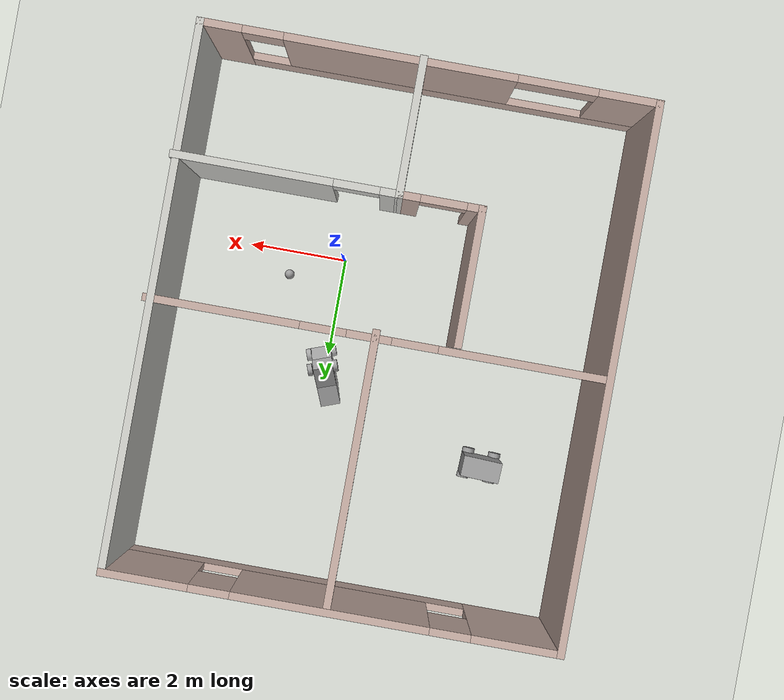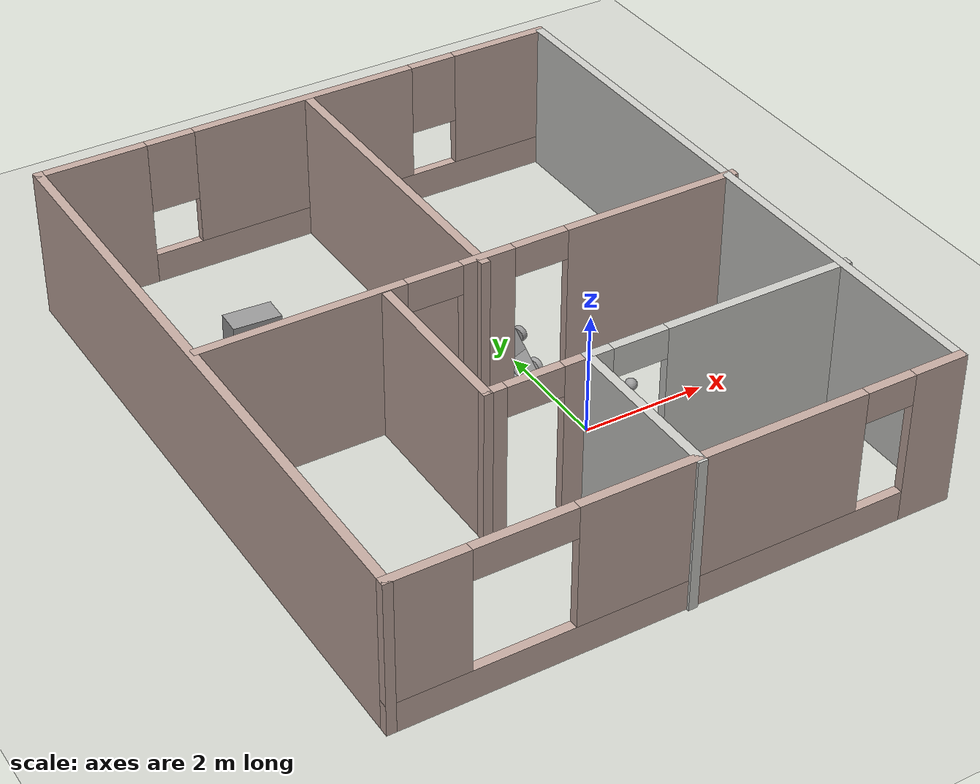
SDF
<sdf version="1.6">
 <world name="default">
  <plugin name="hello" filename="libhello.so"/>
  <light name="sun" type="directional">
   <pose>0 0 10 0 -0 0</pose>
   <diffuse>0.8 0.8 0.8 1</diffuse>
   <specular>0.1 0.1 0.1 1</specular>
   <attenuation>
    <range>1000</range>
    <constant>0.9</constant>
    <linear>0.01</linear>
    <quadratic>0.001</quadratic>
   </attenuation>
   <direction>-0.5 0.5 -1</direction>
  </light>
  <model name="ground_plane">
   <static>1</static>
   <link name="link">
    <collision name="collision">
     <geometry><plane><normal>0 0 1</normal><size>100 100</size></plane></geometry>
     <surface><friction><ode><mu>100</mu><mu2>50</mu2></ode></friction></surface>
    </collision>
    <visual name="visual">
     <cast_shadows>0</cast_shadows>
     <geometry><plane><normal>0 0 1</normal><size>100 100</size></plane></geometry>
     <material>
      <script><uri>file://media/materials/scripts/gazebo.material</uri><name>Gazebo/Grey</name></script>
     </material>
    </visual>
   </link>
  </model>
  <gravity>0 0 -9.8</gravity>
  <magnetic_field>6e-06 2.3e-05 -4.2e-05</magnetic_field>
  <atmosphere type="adiabatic"/>
  <physics name="default_physics" default="0" type="ode">
   <max_step_size>0.001</max_step_size>
   <real_time_factor>1</real_time_factor>
   <real_time_update_rate>1000</real_time_update_rate>
  </physics>
  <scene><ambient>0.4 0.4 0.4 1</ambient><background>0.7 0.7 0.7 1</background><shadows>1</shadows></scene>
  <spherical_coordinates>
   <surface_model>EARTH_WGS84</surface_model>
   <latitude_deg>0</latitude_deg>
   <longitude_deg>0</longitude_deg>
   <elevation>0</elevation>
   <heading_deg>0</heading_deg>
  </spherical_coordinates>
  <model name="robot">
   <link name="link_1">
    <pose>0.270998 -0.281948 0.647062 1.57 -0 0</pose>
    <inertial>
     <mass>1</mass>
     <inertia><ixx>0.145833</ixx><ixy>0</ixy><ixz>0</ixz><iyy>0.145833</iyy><iyz>0</iyz><izz>0.125</izz></inertia>
    </inertial>
    <visual name="visual">
     <geometry><cylinder><radius>0.127</radius><length>0.1</length></cylinder></geometry>
     <material>
      <lighting>1</lighting>
      <script><uri>file://media/materials/scripts/gazebo.material</uri><name>Gazebo/Grey</name></script>
      <shader type="pixel"><normal_map>__default__</normal_map></shader>
      <ambient>0.3 0.3 0.3 1</ambient>
      <diffuse>0.7 0.7 0.7 1</diffuse>
      <specular>0.01 0.01 0.01 1</specular>
      <emissive>0 0 0 1</emissive>
     </material>
    </visual>
    <collision name="collision">
     <geometry><cylinder><radius>0.127</radius><length>0.1</length></cylinder></geometry>
     <surface>
      <friction>
       <ode><mu>1</mu><mu2>1</mu2><fdir1>0 0 0</fdir1><slip1>0</slip1><slip2>0</slip2></ode>
       <torsional>
        <coefficient>1</coefficient>
        <patch_radius>0</patch_radius>
        <surface_radius>0</surface_radius>
        <use_patch_radius>1</use_patch_radius>
        <ode><slip>0</slip></ode>
       </torsional>
      </friction>
      <bounce><restitution_coefficient>0</restitution_coefficient><threshold>1e+06</threshold></bounce>
      <contact>
       <collide_without_contact>0</collide_without_contact>
       <collide_without_contact_bitmask>1</collide_without_contact_bitmask>
       <collide_bitmask>1</collide_bitmask>
       <ode>
        <soft_cfm>0</soft_cfm>
        <soft_erp>0.2</soft_erp>
        <kp>1e+13</kp>
        <kd>1</kd>
        <max_vel>0.01</max_vel>
        <min_depth>0</min_depth>
       </ode>
       <bullet>
        <split_impulse>1</split_impulse>
        <split_impulse_penetration_threshold>-0.01</split_impulse_penetration_threshold>
        <soft_cfm>0</soft_cfm>
        <soft_erp>0.2</soft_erp>
        <kp>1e+13</kp>
        <kd>1</kd>
       </bullet>
      </contact>
     </surface>
    </collision>
   </link>
   <link name="link_1_clone">
    <pose>0.275142 0.249179 0.641427 1.57 -0 0</pose>
    <inertial>
     <mass>1</mass>
     <inertia><ixx>0.145833</ixx><ixy>0</ixy><ixz>0</ixz><iyy>0.145833</iyy><iyz>0</iyz><izz>0.125</izz></inertia>
    </inertial>
    <visual name="visual">
     <geometry><cylinder><radius>0.127</radius><length>0.1</length></cylinder></geometry>
     <material>
      <lighting>1</lighting>
      <script><uri>file://media/materials/scripts/gazebo.material</uri><name>Gazebo/Grey</name></script>
      <shader type="pixel"><normal_map>__default__</normal_map></shader>
      <ambient>0.3 0.3 0.3 1</ambient>
      <diffuse>0.7 0.7 0.7 1</diffuse>
      <specular>0.01 0.01 0.01 1</specular>
      <emissive>0 0 0 1</emissive>
     </material>
    </visual>
    <collision name="collision">
     <geometry><cylinder><radius>0.127</radius><length>0.1</length></cylinder></geometry>
     <surface>
      <friction>
       <ode><mu>1</mu><mu2>1</mu2><fdir1>0 0 0</fdir1><slip1>0</slip1><slip2>0</slip2></ode>
       <torsional>
        <coefficient>1</coefficient>
        <patch_radius>0</patch_radius>
        <surface_radius>0</surface_radius>
        <use_patch_radius>1</use_patch_radius>
        <ode><slip>0</slip></ode>
       </torsional>
      </friction>
      <bounce><restitution_coefficient>0</restitution_coefficient><threshold>1e+06</threshold></bounce>
      <contact>
       <collide_without_contact>0</collide_without_contact>
       <collide_without_contact_bitmask>1</collide_without_contact_bitmask>
       <collide_bitmask>1</collide_bitmask>
       <ode>
        <soft_cfm>0</soft_cfm>
        <soft_erp>0.2</soft_erp>
        <kp>1e+13</kp>
        <kd>1</kd>
        <max_vel>0.01</max_vel>
        <min_depth>0</min_depth>
       </ode>
       <bullet>
        <split_impulse>1</split_impulse>
        <split_impulse_penetration_threshold>-0.01</split_impulse_penetration_threshold>
        <soft_cfm>0</soft_cfm>
        <soft_erp>0.2</soft_erp>
        <kp>1e+13</kp>
        <kd>1</kd>
       </bullet>
      </contact>
     </surface>
    </collision>
   </link>
   <link name="link_1_clone_0">
    <pose>-0.275153 0.242976 0.647654 1.57 -0 0</pose>
    <inertial>
     <mass>1</mass>
     <inertia><ixx>0.145833</ixx><ixy>0</ixy><ixz>0</ixz><iyy>0.145833</iyy><iyz>0</iyz><izz>0.125</izz></inertia>
    </inertial>
    <visual name="visual">
     <geometry><cylinder><radius>0.127</radius><length>0.1</length></cylinder></geometry>
     <material>
      <lighting>1</lighting>
      <script><uri>file://media/materials/scripts/gazebo.material</uri><name>Gazebo/Grey</name></script>
      <shader type="pixel"><normal_map>__default__</normal_map></shader>
      <ambient>0.3 0.3 0.3 1</ambient>
      <diffuse>0.7 0.7 0.7 1</diffuse>
      <specular>0.01 0.01 0.01 1</specular>
      <emissive>0 0 0 1</emissive>
     </material>
    </visual>
    <collision name="collision">
     <geometry><cylinder><radius>0.127</radius><length>0.1</length></cylinder></geometry>
     <surface>
      <friction>
       <ode><mu>1</mu><mu2>1</mu2><fdir1>0 0 0</fdir1><slip1>0</slip1><slip2>0</slip2></ode>
       <torsional>
        <coefficient>1</coefficient>
        <patch_radius>0</patch_radius>
        <surface_radius>0</surface_radius>
        <use_patch_radius>1</use_patch_radius>
        <ode><slip>0</slip></ode>
       </torsional>
      </friction>
      <bounce><restitution_coefficient>0</restitution_coefficient><threshold>1e+06</threshold></bounce>
      <contact>
       <collide_without_contact>0</collide_without_contact>
       <collide_without_contact_bitmask>1</collide_without_contact_bitmask>
       <collide_bitmask>1</collide_bitmask>
       <ode>
        <soft_cfm>0</soft_cfm>
        <soft_erp>0.2</soft_erp>
        <kp>1e+13</kp>
        <kd>1</kd>
        <max_vel>0.01</max_vel>
        <min_depth>0</min_depth>
       </ode>
       <bullet>
        <split_impulse>1</split_impulse>
        <split_impulse_penetration_threshold>-0.01</split_impulse_penetration_threshold>
        <soft_cfm>0</soft_cfm>
        <soft_erp>0.2</soft_erp>
        <kp>1e+13</kp>
        <kd>1</kd>
       </bullet>
      </contact>
     </surface>
    </collision>
   </link>
   <link name="link_1_clone_1">
    <pose>-0.282405 -0.289294 0.64073 1.57 -0 0</pose>
    <inertial>
     <mass>1</mass>
     <inertia><ixx>0.145833</ixx><ixy>0</ixy><ixz>0</ixz><iyy>0.145833</iyy><iyz>0</iyz><izz>0.125</izz></inertia>
    </inertial>
    <visual name="visual">
     <geometry><cylinder><radius>0.127</radius><length>0.1</length></cylinder></geometry>
     <material>
      <lighting>1</lighting>
      <script><uri>file://media/materials/scripts/gazebo.material</uri><name>Gazebo/Grey</name></script>
      <shader type="pixel"><normal_map>__default__</normal_map></shader>
      <ambient>0.3 0.3 0.3 1</ambient>
      <diffuse>0.7 0.7 0.7 1</diffuse>
      <specular>0.01 0.01 0.01 1</specular>
      <emissive>0 0 0 1</emissive>
     </material>
    </visual>
    <collision name="collision">
     <geometry><cylinder><radius>0.127</radius><length>0.1</length></cylinder></geometry>
     <surface>
      <friction>
       <ode><mu>1</mu><mu2>1</mu2><fdir1>0 0 0</fdir1><slip1>0</slip1><slip2>0</slip2></ode>
       <torsional>
        <coefficient>1</coefficient>
        <patch_radius>0</patch_radius>
        <surface_radius>0</surface_radius>
        <use_patch_radius>1</use_patch_radius>
        <ode><slip>0</slip></ode>
       </torsional>
      </friction>
      <bounce><restitution_coefficient>0</restitution_coefficient><threshold>1e+06</threshold></bounce>
      <contact>
       <collide_without_contact>0</collide_without_contact>
       <collide_without_contact_bitmask>1</collide_without_contact_bitmask>
       <collide_bitmask>1</collide_bitmask>
       <ode>
        <soft_cfm>0</soft_cfm>
        <soft_erp>0.2</soft_erp>
        <kp>1e+13</kp>
        <kd>1</kd>
        <max_vel>0.01</max_vel>
        <min_depth>0</min_depth>
       </ode>
       <bullet>
        <split_impulse>1</split_impulse>
        <split_impulse_penetration_threshold>-0.01</split_impulse_penetration_threshold>
        <soft_cfm>0</soft_cfm>
        <soft_erp>0.2</soft_erp>
        <kp>1e+13</kp>
        <kd>1</kd>
       </bullet>
      </contact>
     </surface>
    </collision>
   </link>
   <link name="link_2">
    <pose>-0.000264 -0.021745 1.07308 0 -0 0</pose>
    <inertial>
     <mass>0.325742</mass>
     <inertia>
      <ixx>0.0318616</ixx>
      <ixy>0</ixy>
      <ixz>0</ixz>
      <iyy>0.0437228</iyy>
      <iyz>0</iyz>
      <izz>0.021294</izz>
     </inertia>
    </inertial>
    <visual name="visual">
     <geometry><box><size>0.781473 0.41683 1</size></box></geometry>
     <material>
      <lighting>1</lighting>
      <script><uri>file://media/materials/scripts/gazebo.material</uri><name>Gazebo/Grey</name></script>
      <shader type="pixel"><normal_map>__default__</normal_map></shader>
      <ambient>0.3 0.3 0.3 1</ambient>
      <diffuse>0.7 0.7 0.7 1</diffuse>
      <specular>0.01 0.01 0.01 1</specular>
      <emissive>0 0 0 1</emissive>
     </material>
    </visual>
    <collision name="collision">
     <geometry><box><size>0.781473 0.41683 1</size></box></geometry>
     <surface>
      <friction>
       <ode><mu>1</mu><mu2>1</mu2><fdir1>0 0 0</fdir1><slip1>0</slip1><slip2>0</slip2></ode>
       <torsional>
        <coefficient>1</coefficient>
        <patch_radius>0</patch_radius>
        <surface_radius>0</surface_radius>
        <use_patch_radius>1</use_patch_radius>
        <ode><slip>0</slip></ode>
       </torsional>
      </friction>
      <bounce><restitution_coefficient>0</restitution_coefficient><threshold>1e+06</threshold></bounce>
      <contact>
       <collide_without_contact>0</collide_without_contact>
       <collide_without_contact_bitmask>1</collide_without_contact_bitmask>
       <collide_bitmask>1</collide_bitmask>
       <ode>
        <soft_cfm>0</soft_cfm>
        <soft_erp>0.2</soft_erp>
        <kp>1e+13</kp>
        <kd>1</kd>
        <max_vel>0.01</max_vel>
        <min_depth>0</min_depth>
       </ode>
       <bullet>
        <split_impulse>1</split_impulse>
        <split_impulse_penetration_threshold>-0.01</split_impulse_penetration_threshold>
        <soft_cfm>0</soft_cfm>
        <soft_erp>0.2</soft_erp>
        <kp>1e+13</kp>
        <kd>1</kd>
       </bullet>
      </contact>
     </surface>
    </collision>
   </link>
   <joint name="link_2_JOINT_0" type="revolute">
    <parent>link_2</parent>
    <child>link_1_clone_1</child>
    <axis>
     <xyz>0 0 1</xyz>
     <use_parent_model_frame>0</use_parent_model_frame>
     <limit>
      <lower>-1.79769e+308</lower>
      <upper>1.79769e+308</upper>
      <effort>-1</effort>
      <velocity>-1</velocity>
     </limit>
     <dynamics>
      <spring_reference>0</spring_reference>
      <spring_stiffness>0</spring_stiffness>
      <damping>0</damping>
     </dynamics>
    </axis>
    <physics>
     <ode><limit><cfm>0</cfm><erp>0.2</erp></limit><suspension><cfm>0</cfm><erp>0.2</erp></suspension></ode>
    </physics>
   </joint>
   <joint name="link_2_JOINT_2" type="revolute">
    <parent>link_2</parent>
    <child>link_1</child>
    <axis>
     <xyz>0 0 1</xyz>
     <use_parent_model_frame>0</use_parent_model_frame>
     <limit>
      <lower>-1.79769e+308</lower>
      <upper>1.79769e+308</upper>
      <effort>-1</effort>
      <velocity>-1</velocity>
     </limit>
     <dynamics>
      <spring_reference>0</spring_reference>
      <spring_stiffness>0</spring_stiffness>
      <damping>0</damping>
      <friction>0</friction>
     </dynamics>
    </axis>
    <physics>
     <ode><limit><cfm>0</cfm><erp>0.2</erp></limit><suspension><cfm>0</cfm><erp>0.2</erp></suspension></ode>
    </physics>
   </joint>
   <joint name="link_2_JOINT_3" type="revolute">
    <parent>link_2</parent>
    <child>link_1_clone</child>
    <axis>
     <xyz>0 0 1</xyz>
     <use_parent_model_frame>0</use_parent_model_frame>
     <limit>
      <lower>-1.79769e+308</lower>
      <upper>1.79769e+308</upper>
      <effort>-1</effort>
      <velocity>-1</velocity>
     </limit>
     <dynamics>
      <spring_reference>0</spring_reference>
      <spring_stiffness>0</spring_stiffness>
      <damping>0</damping>
      <friction>0</friction>
     </dynamics>
    </axis>
    <physics>
     <ode><limit><cfm>0</cfm><erp>0.2</erp></limit><suspension><cfm>0</cfm><erp>0.2</erp></suspension></ode>
    </physics>
   </joint>
   <joint name="link_2_JOINT_4" type="revolute">
    <parent>link_2</parent>
    <child>link_1_clone_0</child>
    <axis>
     <xyz>0 0 1</xyz>
     <use_parent_model_frame>0</use_parent_model_frame>
     <limit>
      <lower>-1.79769e+308</lower>
      <upper>1.79769e+308</upper>
      <effort>-1</effort>
      <velocity>-1</velocity>
     </limit>
     <dynamics>
      <spring_reference>0</spring_reference>
      <spring_stiffness>0</spring_stiffness>
      <damping>0</damping>
      <friction>0</friction>
     </dynamics>
    </axis>
    <physics>
     <ode><limit><cfm>0</cfm><erp>0.2</erp></limit><suspension><cfm>0</cfm><erp>0.2</erp></suspension></ode>
    </physics>
   </joint>
   <static>0</static>
   <pose>0.310712 1.66318 0.288982 -3.1408 -0.948623 1.92141</pose>
  </model>
  <model name="2ndfloor">
   <pose>-0.98463 1.44931 0 0 -0 0</pose>
   <link name="Wall_0">
    <collision name="Wall_0_Collision">
     <geometry><box><size>10.75 0.15 2.5</size></box></geometry>
     <pose>0 0 1.25 0 -0 0</pose>
    </collision>
    <visual name="Wall_0_Visual">
     <pose>0 0 1.25 0 -0 0</pose>
     <geometry><box><size>10.75 0.15 2.5</size></box></geometry>
     <material>
      <script><uri>file://media/materials/scripts/gazebo.material</uri><name>Gazebo/Grey</name></script>
      <ambient>0.760784 0.662745 0.627451 1</ambient>
     </material>
     <meta><layer>0</layer></meta>
    </visual>
    <pose>-4.46537 0.020694 0 0 -0 1.5708</pose>
   </link>
   <link name="Wall_1">
    <pose>-0.040365 5.32069 0 0 -0 0</pose>
    <visual name="Wall_1_Visual_0">
     <pose>-3.59416 0 1.25 0 -0 0</pose>
     <geometry><box><size>1.81167 0.15 2.5</size></box></geometry>
     <material>
      <script><uri>file://media/materials/scripts/gazebo.material</uri><name>Gazebo/Grey</name></script>
      <ambient>0.760784 0.662745 0.627451 1</ambient>
     </material>
     <meta><layer>0</layer></meta>
    </visual>
    <collision name="Wall_1_Collision_0">
     <geometry><box><size>1.81167 0.15 2.5</size></box></geometry>
     <pose>-3.59416 0 1.25 0 -0 0</pose>
    </collision>
    <visual name="Wall_1_Visual_1">
     <pose>0.905836 0 0.25 0 -0 0</pose>
     <geometry><box><size>7.18833 0.15 0.5</size></box></geometry>
     <material>
      <script><uri>file://media/materials/scripts/gazebo.material</uri><name>Gazebo/Grey</name></script>
      <ambient>0.760784 0.662745 0.627451 1</ambient>
     </material>
     <meta><layer>0</layer></meta>
    </visual>
    <collision name="Wall_1_Collision_1">
     <geometry><box><size>7.18833 0.15 0.5</size></box></geometry>
     <pose>0.905836 0 0.25 0 -0 0</pose>
    </collision>
    <visual name="Wall_1_Visual_2">
     <pose>0.03653 0 1.5 0 -0 0</pose>
     <geometry><box><size>3.84972 0.15 2</size></box></geometry>
     <material>
      <script><uri>file://media/materials/scripts/gazebo.material</uri><name>Gazebo/Grey</name></script>
      <ambient>0.760784 0.662745 0.627451 1</ambient>
     </material>
     <meta><layer>0</layer></meta>
    </visual>
    <collision name="Wall_1_Collision_2">
     <geometry><box><size>3.84972 0.15 2</size></box></geometry>
     <pose>0.03653 0 1.5 0 -0 0</pose>
    </collision>
    <visual name="Wall_1_Visual_3">
     <pose>3.63069 0 1.5 0 -0 0</pose>
     <geometry><box><size>1.73861 0.15 2</size></box></geometry>
     <material>
      <script><uri>file://media/materials/scripts/gazebo.material</uri><name>Gazebo/Grey</name></script>
      <ambient>0.760784 0.662745 0.627451 1</ambient>
     </material>
     <meta><layer>0</layer></meta>
    </visual>
    <collision name="Wall_1_Collision_3">
     <geometry><box><size>1.73861 0.15 2</size></box></geometry>
     <pose>3.63069 0 1.5 0 -0 0</pose>
    </collision>
    <visual name="Wall_1_Visual_4">
     <pose>-2.28833 0 1.9 0 -0 0</pose>
     <geometry><box><size>0.8 0.15 1.2</size></box></geometry>
     <material>
      <script><uri>file://media/materials/scripts/gazebo.material</uri><name>Gazebo/Grey</name></script>
      <ambient>0.760784 0.662745 0.627451 1</ambient>
     </material>
     <meta><layer>0</layer></meta>
    </visual>
    <collision name="Wall_1_Collision_4">
     <geometry><box><size>0.8 0.15 1.2</size></box></geometry>
     <pose>-2.28833 0 1.9 0 -0 0</pose>
    </collision>
    <visual name="Wall_1_Visual_5">
     <pose>2.36139 0 1.9 0 -0 0</pose>
     <geometry><box><size>0.8 0.15 1.2</size></box></geometry>
     <material>
      <script><uri>file://media/materials/scripts/gazebo.material</uri><name>Gazebo/Grey</name></script>
      <ambient>0.760784 0.662745 0.627451 1</ambient>
     </material>
     <meta><layer>0</layer></meta>
    </visual>
    <collision name="Wall_1_Collision_5">
     <geometry><box><size>0.8 0.15 1.2</size></box></geometry>
     <pose>2.36139 0 1.9 0 -0 0</pose>
    </collision>
   </link>
   <link name="Wall_10">
    <collision name="Wall_10_Collision">
     <geometry><box><size>2.75 0.15 2.5</size></box></geometry>
     <pose>0 0 1.25 0 -0 0</pose>
    </collision>
    <visual name="Wall_10_Visual">
     <pose>0 0 1.25 0 -0 0</pose>
     <geometry><box><size>2.75 0.15 2.5</size></box></geometry>
     <material>
      <script><uri>file://media/materials/scripts/gazebo.material</uri><name>Gazebo/CeilingTiled</name></script>
      <ambient>0.760784 0.662745 0.627451 1</ambient>
     </material>
     <meta><layer>0</layer></meta>
    </visual>
    <pose>0.087936 -4.02069 0 0 -0 1.5708</pose>
   </link>
   <link name="Wall_11">
    <pose>2.26294 -2.72069 0 0 -0 0</pose>
    <visual name="Wall_11_Visual_0">
     <pose>-2.02453 0 1.25 0 -0 0</pose>
     <geometry><box><size>0.450936 0.15 2.5</size></box></geometry>
     <material>
      <script><uri>file://media/materials/scripts/gazebo.material</uri><name>Gazebo/CeilingTiled</name></script>
      <ambient>0.760784 0.662745 0.627451 1</ambient>
     </material>
     <meta><layer>0</layer></meta>
    </visual>
    <collision name="Wall_11_Collision_0">
     <geometry><box><size>0.450936 0.15 2.5</size></box></geometry>
     <pose>-2.02453 0 1.25 0 -0 0</pose>
    </collision>
    <visual name="Wall_11_Visual_1">
     <pose>0.675468 0 1.25 0 -0 0</pose>
     <geometry><box><size>3.14906 0.15 2.5</size></box></geometry>
     <material>
      <script><uri>file://media/materials/scripts/gazebo.material</uri><name>Gazebo/CeilingTiled</name></script>
      <ambient>0.760784 0.662745 0.627451 1</ambient>
     </material>
     <meta><layer>0</layer></meta>
    </visual>
    <collision name="Wall_11_Collision_1">
     <geometry><box><size>3.14906 0.15 2.5</size></box></geometry>
     <pose>0.675468 0 1.25 0 -0 0</pose>
    </collision>
    <visual name="Wall_11_Visual_2">
     <pose>-1.34906 0 2.25 0 -0 0</pose>
     <geometry><box><size>0.9 0.15 0.5</size></box></geometry>
     <material>
      <script><uri>file://media/materials/scripts/gazebo.material</uri><name>Gazebo/CeilingTiled</name></script>
      <ambient>0.760784 0.662745 0.627451 1</ambient>
     </material>
     <meta><layer>0</layer></meta>
    </visual>
    <collision name="Wall_11_Collision_2">
     <geometry><box><size>0.9 0.15 0.5</size></box></geometry>
     <pose>-1.34906 0 2.25 0 -0 0</pose>
    </collision>
   </link>
   <link name="Wall_13">
    <pose>-0.712064 -2.72069 0 0 -0 3.14159</pose>
    <visual name="Wall_13_Visual_0">
     <pose>-0.634237 0 1.25 0 -0 0</pose>
     <geometry><box><size>0.481526 0.15 2.5</size></box></geometry>
     <material>
      <script><uri>file://media/materials/scripts/gazebo.material</uri><name>Gazebo/Grey</name></script>
      <ambient>0.760784 0.662745 0.627451 1</ambient>
     </material>
     <meta><layer>0</layer></meta>
    </visual>
    <collision name="Wall_13_Collision_0">
     <geometry><box><size>0.481526 0.15 2.5</size></box></geometry>
     <pose>-0.634237 0 1.25 0 -0 0</pose>
    </collision>
    <visual name="Wall_13_Visual_1">
     <pose>0.690763 0 1.25 0 -0 0</pose>
     <geometry><box><size>0.368474 0.15 2.5</size></box></geometry>
     <material>
      <script><uri>file://media/materials/scripts/gazebo.material</uri><name>Gazebo/Grey</name></script>
      <ambient>0.760784 0.662745 0.627451 1</ambient>
     </material>
     <meta><layer>0</layer></meta>
    </visual>
    <collision name="Wall_13_Collision_1">
     <geometry><box><size>0.368474 0.15 2.5</size></box></geometry>
     <pose>0.690763 0 1.25 0 -0 0</pose>
    </collision>
    <visual name="Wall_13_Visual_2">
     <pose>0.056526 0 2.25 0 -0 0</pose>
     <geometry><box><size>0.9 0.15 0.5</size></box></geometry>
     <material>
      <script><uri>file://media/materials/scripts/gazebo.material</uri><name>Gazebo/Grey</name></script>
      <ambient>0.760784 0.662745 0.627451 1</ambient>
     </material>
     <meta><layer>0</layer></meta>
    </visual>
    <collision name="Wall_13_Collision_2">
     <geometry><box><size>0.9 0.15 0.5</size></box></geometry>
     <pose>0.056526 0 2.25 0 -0 0</pose>
    </collision>
   </link>
   <link name="Wall_14">
    <collision name="Wall_14_Collision">
     <geometry><box><size>2.75 0.15 2.5</size></box></geometry>
     <pose>0 0 1.25 0 -0 0</pose>
    </collision>
    <visual name="Wall_14_Visual">
     <pose>0 0 1.25 0 -0 0</pose>
     <geometry><box><size>2.75 0.15 2.5</size></box></geometry>
     <material>
      <script><uri>file://media/materials/scripts/gazebo.material</uri><name>Gazebo/Grey</name></script>
      <ambient>0.760784 0.662745 0.627451 1</ambient>
     </material>
     <meta><layer>0</layer></meta>
    </visual>
    <pose>-1.51206 -1.42069 0 0 -0 1.5708</pose>
   </link>
   <link name="Wall_2">
    <collision name="Wall_2_Collision">
     <geometry><box><size>10.75 0.15 2.5</size></box></geometry>
     <pose>0 0 1.25 0 -0 0</pose>
    </collision>
    <visual name="Wall_2_Visual">
     <pose>0 0 1.25 0 -0 0</pose>
     <geometry><box><size>10.75 0.15 2.5</size></box></geometry>
     <material>
      <script><uri>file://media/materials/scripts/gazebo.material</uri><name>Gazebo/CeilingTiled</name></script>
      <ambient>0.760784 0.662745 0.627451 1</ambient>
     </material>
     <meta><layer>0</layer></meta>
    </visual>
    <pose>4.38464 0.020694 0 0 0 -1.5708</pose>
   </link>
   <link name="Wall_3">
    <pose>-0.040365 -5.27931 0 0 -0 3.14159</pose>
    <visual name="Wall_3_Visual_0">
     <pose>-4.05896 0 1.25 0 -0 0</pose>
     <geometry><box><size>0.882086 0.15 2.5</size></box></geometry>
     <material>
      <script><uri>file://media/materials/scripts/gazebo.material</uri><name>Gazebo/Grey</name></script>
      <ambient>0.760784 0.662745 0.627451 1</ambient>
     </material>
     <meta><layer>0</layer></meta>
    </visual>
    <collision name="Wall_3_Collision_0">
     <geometry><box><size>0.882086 0.15 2.5</size></box></geometry>
     <pose>-4.05896 0 1.25 0 -0 0</pose>
    </collision>
    <visual name="Wall_3_Visual_1">
     <pose>0.441043 0 0.25 0 -0 0</pose>
     <geometry><box><size>8.11791 0.15 0.5</size></box></geometry>
     <material>
      <script><uri>file://media/materials/scripts/gazebo.material</uri><name>Gazebo/Grey</name></script>
      <ambient>0.760784 0.662745 0.627451 1</ambient>
     </material>
     <meta><layer>0</layer></meta>
    </visual>
    <collision name="Wall_3_Collision_1">
     <geometry><box><size>8.11791 0.15 0.5</size></box></geometry>
     <pose>0.441043 0 0.25 0 -0 0</pose>
    </collision>
    <visual name="Wall_3_Visual_2">
     <pose>-0.560523 0 1.5 0 -0 0</pose>
     <geometry><box><size>4.51478 0.15 2</size></box></geometry>
     <material>
      <script><uri>file://media/materials/scripts/gazebo.material</uri><name>Gazebo/Grey</name></script>
      <ambient>0.760784 0.662745 0.627451 1</ambient>
     </material>
     <meta><layer>0</layer></meta>
    </visual>
    <collision name="Wall_3_Collision_2">
     <geometry><box><size>4.51478 0.15 2</size></box></geometry>
     <pose>-0.560523 0 1.5 0 -0 0</pose>
    </collision>
    <visual name="Wall_3_Visual_3">
     <pose>3.87343 0 1.5 0 -0 0</pose>
     <geometry><box><size>1.25313 0.15 2</size></box></geometry>
     <material>
      <script><uri>file://media/materials/scripts/gazebo.material</uri><name>Gazebo/Grey</name></script>
      <ambient>0.760784 0.662745 0.627451 1</ambient>
     </material>
     <meta><layer>0</layer></meta>
    </visual>
    <collision name="Wall_3_Collision_3">
     <geometry><box><size>1.25313 0.15 2</size></box></geometry>
     <pose>3.87343 0 1.5 0 -0 0</pose>
    </collision>
    <visual name="Wall_3_Visual_4">
     <pose>-3.21791 0 2.25 0 -0 0</pose>
     <geometry><box><size>0.8 0.15 0.5</size></box></geometry>
     <material>
      <script><uri>file://media/materials/scripts/gazebo.material</uri><name>Gazebo/Grey</name></script>
      <ambient>0.760784 0.662745 0.627451 1</ambient>
     </material>
     <meta><layer>0</layer></meta>
    </visual>
    <collision name="Wall_3_Collision_4">
     <geometry><box><size>0.8 0.15 0.5</size></box></geometry>
     <pose>-3.21791 0 2.25 0 -0 0</pose>
    </collision>
    <visual name="Wall_3_Visual_5">
     <pose>2.47187 0 2.25 0 -0 0</pose>
     <geometry><box><size>1.55 0.15 0.5</size></box></geometry>
     <material>
      <script><uri>file://media/materials/scripts/gazebo.material</uri><name>Gazebo/Grey</name></script>
      <ambient>0.760784 0.662745 0.627451 1</ambient>
     </material>
     <meta><layer>0</layer></meta>
    </visual>
    <collision name="Wall_3_Collision_5">
     <geometry><box><size>1.55 0.15 0.5</size></box></geometry>
     <pose>2.47187 0 2.25 0 -0 0</pose>
    </collision>
   </link>
   <link name="Wall_6">
    <pose>0.040365 0.044093 0 0 -0 0</pose>
    <visual name="Wall_6_Visual_0">
     <pose>-2.84889 0 1.25 0 -0 0</pose>
     <geometry><box><size>3.30222 0.15 2.5</size></box></geometry>
     <material>
      <script><uri>file://media/materials/scripts/gazebo.material</uri><name>Gazebo/Grey</name></script>
      <ambient>0.760784 0.662745 0.627451 1</ambient>
     </material>
     <meta><layer>0</layer></meta>
    </visual>
    <collision name="Wall_6_Collision_0">
     <geometry><box><size>3.30222 0.15 2.5</size></box></geometry>
     <pose>-2.84889 0 1.25 0 -0 0</pose>
    </collision>
    <visual name="Wall_6_Visual_1">
     <pose>0.139341 0 1.25 0 -0 0</pose>
     <geometry><box><size>0.874233 0.15 2.5</size></box></geometry>
     <material>
      <script><uri>file://media/materials/scripts/gazebo.material</uri><name>Gazebo/Grey</name></script>
      <ambient>0.760784 0.662745 0.627451 1</ambient>
     </material>
     <meta><layer>0</layer></meta>
    </visual>
    <collision name="Wall_6_Collision_1">
     <geometry><box><size>0.874233 0.15 2.5</size></box></geometry>
     <pose>0.139341 0 1.25 0 -0 0</pose>
    </collision>
    <visual name="Wall_6_Visual_2">
     <pose>2.98823 0 1.25 0 -0 0</pose>
     <geometry><box><size>3.02354 0.15 2.5</size></box></geometry>
     <material>
      <script><uri>file://media/materials/scripts/gazebo.material</uri><name>Gazebo/Grey</name></script>
      <ambient>0.760784 0.662745 0.627451 1</ambient>
     </material>
     <meta><layer>0</layer></meta>
    </visual>
    <collision name="Wall_6_Collision_2">
     <geometry><box><size>3.02354 0.15 2.5</size></box></geometry>
     <pose>2.98823 0 1.25 0 -0 0</pose>
    </collision>
    <visual name="Wall_6_Visual_3">
     <pose>-0.747775 0 2.25 0 -0 0</pose>
     <geometry><box><size>0.9 0.15 0.5</size></box></geometry>
     <material>
      <script><uri>file://media/materials/scripts/gazebo.material</uri><name>Gazebo/Grey</name></script>
      <ambient>0.760784 0.662745 0.627451 1</ambient>
     </material>
     <meta><layer>0</layer></meta>
    </visual>
    <collision name="Wall_6_Collision_3">
     <geometry><box><size>0.9 0.15 0.5</size></box></geometry>
     <pose>-0.747775 0 2.25 0 -0 0</pose>
    </collision>
    <visual name="Wall_6_Visual_4">
     <pose>1.02646 0 2.25 0 -0 0</pose>
     <geometry><box><size>0.9 0.15 0.5</size></box></geometry>
     <material>
      <script><uri>file://media/materials/scripts/gazebo.material</uri><name>Gazebo/Grey</name></script>
      <ambient>0.760784 0.662745 0.627451 1</ambient>
     </material>
     <meta><layer>0</layer></meta>
    </visual>
    <collision name="Wall_6_Collision_4">
     <geometry><box><size>0.9 0.15 0.5</size></box></geometry>
     <pose>1.02646 0 2.25 0 -0 0</pose>
    </collision>
   </link>
   <link name="Wall_8">
    <collision name="Wall_8_Collision">
     <geometry><box><size>5.5 0.15 2.5</size></box></geometry>
     <pose>0 0 1.25 0 -0 0</pose>
    </collision>
    <visual name="Wall_8_Visual">
     <pose>0 0 1.25 0 -0 0</pose>
     <geometry><box><size>5.5 0.15 2.5</size></box></geometry>
     <material>
      <script><uri>file://media/materials/scripts/gazebo.material</uri><name>Gazebo/Grey</name></script>
      <ambient>0.760784 0.662745 0.627451 1</ambient>
     </material>
     <meta><layer>0</layer></meta>
    </visual>
    <pose>0.057346 2.61911 0 0 0 -1.5708</pose>
   </link>
   <static>1</static>
  </model>
  <model name="robot_0">
   <link name="link_1">
    <pose>0.270998 -0.281948 0.647062 1.57 -0 0</pose>
    <inertial>
     <mass>1</mass>
     <inertia><ixx>0.145833</ixx><ixy>0</ixy><ixz>0</ixz><iyy>0.145833</iyy><iyz>0</iyz><izz>0.125</izz></inertia>
    </inertial>
    <visual name="visual">
     <geometry><cylinder><radius>0.127</radius><length>0.1</length></cylinder></geometry>
     <material>
      <lighting>1</lighting>
      <script><uri>file://media/materials/scripts/gazebo.material</uri><name>Gazebo/Grey</name></script>
      <shader type="pixel"><normal_map>__default__</normal_map></shader>
      <ambient>0.3 0.3 0.3 1</ambient>
      <diffuse>0.7 0.7 0.7 1</diffuse>
      <specular>0.01 0.01 0.01 1</specular>
      <emissive>0 0 0 1</emissive>
     </material>
    </visual>
    <collision name="collision">
     <geometry><cylinder><radius>0.127</radius><length>0.1</length></cylinder></geometry>
     <surface>
      <friction>
       <ode><mu>1</mu><mu2>1</mu2><fdir1>0 0 0</fdir1><slip1>0</slip1><slip2>0</slip2></ode>
       <torsional>
        <coefficient>1</coefficient>
        <patch_radius>0</patch_radius>
        <surface_radius>0</surface_radius>
        <use_patch_radius>1</use_patch_radius>
        <ode><slip>0</slip></ode>
       </torsional>
      </friction>
      <bounce><restitution_coefficient>0</restitution_coefficient><threshold>1e+06</threshold></bounce>
      <contact>
       <collide_without_contact>0</collide_without_contact>
       <collide_without_contact_bitmask>1</collide_without_contact_bitmask>
       <collide_bitmask>1</collide_bitmask>
       <ode>
        <soft_cfm>0</soft_cfm>
        <soft_erp>0.2</soft_erp>
        <kp>1e+13</kp>
        <kd>1</kd>
        <max_vel>0.01</max_vel>
        <min_depth>0</min_depth>
       </ode>
       <bullet>
        <split_impulse>1</split_impulse>
        <split_impulse_penetration_threshold>-0.01</split_impulse_penetration_threshold>
        <soft_cfm>0</soft_cfm>
        <soft_erp>0.2</soft_erp>
        <kp>1e+13</kp>
        <kd>1</kd>
       </bullet>
      </contact>
     </surface>
    </collision>
   </link>
   <link name="link_1_clone">
    <pose>0.275142 0.249179 0.641427 1.57 -0 0</pose>
    <inertial>
     <mass>1</mass>
     <inertia><ixx>0.145833</ixx><ixy>0</ixy><ixz>0</ixz><iyy>0.145833</iyy><iyz>0</iyz><izz>0.125</izz></inertia>
    </inertial>
    <visual name="visual">
     <geometry><cylinder><radius>0.127</radius><length>0.1</length></cylinder></geometry>
     <material>
      <lighting>1</lighting>
      <script><uri>file://media/materials/scripts/gazebo.material</uri><name>Gazebo/Grey</name></script>
      <shader type="pixel"><normal_map>__default__</normal_map></shader>
      <ambient>0.3 0.3 0.3 1</ambient>
      <diffuse>0.7 0.7 0.7 1</diffuse>
      <specular>0.01 0.01 0.01 1</specular>
      <emissive>0 0 0 1</emissive>
     </material>
    </visual>
    <collision name="collision">
     <geometry><cylinder><radius>0.127</radius><length>0.1</length></cylinder></geometry>
     <surface>
      <friction>
       <ode><mu>1</mu><mu2>1</mu2><fdir1>0 0 0</fdir1><slip1>0</slip1><slip2>0</slip2></ode>
       <torsional>
        <coefficient>1</coefficient>
        <patch_radius>0</patch_radius>
        <surface_radius>0</surface_radius>
        <use_patch_radius>1</use_patch_radius>
        <ode><slip>0</slip></ode>
       </torsional>
      </friction>
      <bounce><restitution_coefficient>0</restitution_coefficient><threshold>1e+06</threshold></bounce>
      <contact>
       <collide_without_contact>0</collide_without_contact>
       <collide_without_contact_bitmask>1</collide_without_contact_bitmask>
       <collide_bitmask>1</collide_bitmask>
       <ode>
        <soft_cfm>0</soft_cfm>
        <soft_erp>0.2</soft_erp>
        <kp>1e+13</kp>
        <kd>1</kd>
        <max_vel>0.01</max_vel>
        <min_depth>0</min_depth>
       </ode>
       <bullet>
        <split_impulse>1</split_impulse>
        <split_impulse_penetration_threshold>-0.01</split_impulse_penetration_threshold>
        <soft_cfm>0</soft_cfm>
        <soft_erp>0.2</soft_erp>
        <kp>1e+13</kp>
        <kd>1</kd>
       </bullet>
      </contact>
     </surface>
    </collision>
   </link>
   <link name="link_1_clone_0">
    <pose>-0.275153 0.242976 0.647654 1.57 -0 0</pose>
    <inertial>
     <mass>1</mass>
     <inertia><ixx>0.145833</ixx><ixy>0</ixy><ixz>0</ixz><iyy>0.145833</iyy><iyz>0</iyz><izz>0.125</izz></inertia>
    </inertial>
    <visual name="visual">
     <geometry><cylinder><radius>0.127</radius><length>0.1</length></cylinder></geometry>
     <material>
      <lighting>1</lighting>
      <script><uri>file://media/materials/scripts/gazebo.material</uri><name>Gazebo/Grey</name></script>
      <shader type="pixel"><normal_map>__default__</normal_map></shader>
      <ambient>0.3 0.3 0.3 1</ambient>
      <diffuse>0.7 0.7 0.7 1</diffuse>
      <specular>0.01 0.01 0.01 1</specular>
      <emissive>0 0 0 1</emissive>
     </material>
    </visual>
    <collision name="collision">
     <geometry><cylinder><radius>0.127</radius><length>0.1</length></cylinder></geometry>
     <surface>
      <friction>
       <ode><mu>1</mu><mu2>1</mu2><fdir1>0 0 0</fdir1><slip1>0</slip1><slip2>0</slip2></ode>
       <torsional>
        <coefficient>1</coefficient>
        <patch_radius>0</patch_radius>
        <surface_radius>0</surface_radius>
        <use_patch_radius>1</use_patch_radius>
        <ode><slip>0</slip></ode>
       </torsional>
      </friction>
      <bounce><restitution_coefficient>0</restitution_coefficient><threshold>1e+06</threshold></bounce>
      <contact>
       <collide_without_contact>0</collide_without_contact>
       <collide_without_contact_bitmask>1</collide_without_contact_bitmask>
       <collide_bitmask>1</collide_bitmask>
       <ode>
        <soft_cfm>0</soft_cfm>
        <soft_erp>0.2</soft_erp>
        <kp>1e+13</kp>
        <kd>1</kd>
        <max_vel>0.01</max_vel>
        <min_depth>0</min_depth>
       </ode>
       <bullet>
        <split_impulse>1</split_impulse>
        <split_impulse_penetration_threshold>-0.01</split_impulse_penetration_threshold>
        <soft_cfm>0</soft_cfm>
        <soft_erp>0.2</soft_erp>
        <kp>1e+13</kp>
        <kd>1</kd>
       </bullet>
      </contact>
     </surface>
    </collision>
   </link>
   <link name="link_1_clone_1">
    <pose>-0.282405 -0.289294 0.64073 1.57 -0 0</pose>
    <inertial>
     <mass>1</mass>
     <inertia><ixx>0.145833</ixx><ixy>0</ixy><ixz>0</ixz><iyy>0.145833</iyy><iyz>0</iyz><izz>0.125</izz></inertia>
    </inertial>
    <visual name="visual">
     <geometry><cylinder><radius>0.127</radius><length>0.1</length></cylinder></geometry>
     <material>
      <lighting>1</lighting>
      <script><uri>file://media/materials/scripts/gazebo.material</uri><name>Gazebo/Grey</name></script>
      <shader type="pixel"><normal_map>__default__</normal_map></shader>
      <ambient>0.3 0.3 0.3 1</ambient>
      <diffuse>0.7 0.7 0.7 1</diffuse>
      <specular>0.01 0.01 0.01 1</specular>
      <emissive>0 0 0 1</emissive>
     </material>
    </visual>
    <collision name="collision">
     <geometry><cylinder><radius>0.127</radius><length>0.1</length></cylinder></geometry>
     <surface>
      <friction>
       <ode><mu>1</mu><mu2>1</mu2><fdir1>0 0 0</fdir1><slip1>0</slip1><slip2>0</slip2></ode>
       <torsional>
        <coefficient>1</coefficient>
        <patch_radius>0</patch_radius>
        <surface_radius>0</surface_radius>
        <use_patch_radius>1</use_patch_radius>
        <ode><slip>0</slip></ode>
       </torsional>
      </friction>
      <bounce><restitution_coefficient>0</restitution_coefficient><threshold>1e+06</threshold></bounce>
      <contact>
       <collide_without_contact>0</collide_without_contact>
       <collide_without_contact_bitmask>1</collide_without_contact_bitmask>
       <collide_bitmask>1</collide_bitmask>
       <ode>
        <soft_cfm>0</soft_cfm>
        <soft_erp>0.2</soft_erp>
        <kp>1e+13</kp>
        <kd>1</kd>
        <max_vel>0.01</max_vel>
        <min_depth>0</min_depth>
       </ode>
       <bullet>
        <split_impulse>1</split_impulse>
        <split_impulse_penetration_threshold>-0.01</split_impulse_penetration_threshold>
        <soft_cfm>0</soft_cfm>
        <soft_erp>0.2</soft_erp>
        <kp>1e+13</kp>
        <kd>1</kd>
       </bullet>
      </contact>
     </surface>
    </collision>
   </link>
   <link name="link_2">
    <pose>-0.000264 -0.021745 1.07308 0 -0 0</pose>
    <inertial>
     <mass>0.325742</mass>
     <inertia>
      <ixx>0.0318616</ixx>
      <ixy>0</ixy>
      <ixz>0</ixz>
      <iyy>0.0437228</iyy>
      <iyz>0</iyz>
      <izz>0.021294</izz>
     </inertia>
    </inertial>
    <visual name="visual">
     <geometry><box><size>0.781473 0.41683 1</size></box></geometry>
     <material>
      <lighting>1</lighting>
      <script><uri>file://media/materials/scripts/gazebo.material</uri><name>Gazebo/Grey</name></script>
      <shader type="pixel"><normal_map>__default__</normal_map></shader>
      <ambient>0.3 0.3 0.3 1</ambient>
      <diffuse>0.7 0.7 0.7 1</diffuse>
      <specular>0.01 0.01 0.01 1</specular>
      <emissive>0 0 0 1</emissive>
     </material>
    </visual>
    <collision name="collision">
     <geometry><box><size>0.781473 0.41683 1</size></box></geometry>
     <surface>
      <friction>
       <ode><mu>1</mu><mu2>1</mu2><fdir1>0 0 0</fdir1><slip1>0</slip1><slip2>0</slip2></ode>
       <torsional>
        <coefficient>1</coefficient>
        <patch_radius>0</patch_radius>
        <surface_radius>0</surface_radius>
        <use_patch_radius>1</use_patch_radius>
        <ode><slip>0</slip></ode>
       </torsional>
      </friction>
      <bounce><restitution_coefficient>0</restitution_coefficient><threshold>1e+06</threshold></bounce>
      <contact>
       <collide_without_contact>0</collide_without_contact>
       <collide_without_contact_bitmask>1</collide_without_contact_bitmask>
       <collide_bitmask>1</collide_bitmask>
       <ode>
        <soft_cfm>0</soft_cfm>
        <soft_erp>0.2</soft_erp>
        <kp>1e+13</kp>
        <kd>1</kd>
        <max_vel>0.01</max_vel>
        <min_depth>0</min_depth>
       </ode>
       <bullet>
        <split_impulse>1</split_impulse>
        <split_impulse_penetration_threshold>-0.01</split_impulse_penetration_threshold>
        <soft_cfm>0</soft_cfm>
        <soft_erp>0.2</soft_erp>
        <kp>1e+13</kp>
        <kd>1</kd>
       </bullet>
      </contact>
     </surface>
    </collision>
   </link>
   <joint name="link_2_JOINT_0" type="revolute">
    <parent>link_2</parent>
    <child>link_1_clone_1</child>
    <axis>
     <xyz>0 0 1</xyz>
     <use_parent_model_frame>0</use_parent_model_frame>
     <limit>
      <lower>-1.79769e+308</lower>
      <upper>1.79769e+308</upper>
      <effort>-1</effort>
      <velocity>-1</velocity>
     </limit>
     <dynamics>
      <spring_reference>0</spring_reference>
      <spring_stiffness>0</spring_stiffness>
      <damping>0</damping>
     </dynamics>
    </axis>
    <physics>
     <ode><limit><cfm>0</cfm><erp>0.2</erp></limit><suspension><cfm>0</cfm><erp>0.2</erp></suspension></ode>
    </physics>
   </joint>
   <joint name="link_2_JOINT_2" type="revolute">
    <parent>link_2</parent>
    <child>link_1</child>
    <axis>
     <xyz>0 0 1</xyz>
     <use_parent_model_frame>0</use_parent_model_frame>
     <limit>
      <lower>-1.79769e+308</lower>
      <upper>1.79769e+308</upper>
      <effort>-1</effort>
      <velocity>-1</velocity>
     </limit>
     <dynamics>
      <spring_reference>0</spring_reference>
      <spring_stiffness>0</spring_stiffness>
      <damping>0</damping>
      <friction>0</friction>
     </dynamics>
    </axis>
    <physics>
     <ode><limit><cfm>0</cfm><erp>0.2</erp></limit><suspension><cfm>0</cfm><erp>0.2</erp></suspension></ode>
    </physics>
   </joint>
   <joint name="link_2_JOINT_3" type="revolute">
    <parent>link_2</parent>
    <child>link_1_clone</child>
    <axis>
     <xyz>0 0 1</xyz>
     <use_parent_model_frame>0</use_parent_model_frame>
     <limit>
      <lower>-1.79769e+308</lower>
      <upper>1.79769e+308</upper>
      <effort>-1</effort>
      <velocity>-1</velocity>
     </limit>
     <dynamics>
      <spring_reference>0</spring_reference>
      <spring_stiffness>0</spring_stiffness>
      <damping>0</damping>
      <friction>0</friction>
     </dynamics>
    </axis>
    <physics>
     <ode><limit><cfm>0</cfm><erp>0.2</erp></limit><suspension><cfm>0</cfm><erp>0.2</erp></suspension></ode>
    </physics>
   </joint>
   <joint name="link_2_JOINT_4" type="revolute">
    <parent>link_2</parent>
    <child>link_1_clone_0</child>
    <axis>
     <xyz>0 0 1</xyz>
     <use_parent_model_frame>0</use_parent_model_frame>
     <limit>
      <lower>-1.79769e+308</lower>
      <upper>1.79769e+308</upper>
      <effort>-1</effort>
      <velocity>-1</velocity>
     </limit>
     <dynamics>
      <spring_reference>0</spring_reference>
      <spring_stiffness>0</spring_stiffness>
      <damping>0</damping>
      <friction>0</friction>
     </dynamics>
    </axis>
    <physics>
     <ode><limit><cfm>0</cfm><erp>0.2</erp></limit><suspension><cfm>0</cfm><erp>0.2</erp></suspension></ode>
    </physics>
   </joint>
   <static>0</static>
   <pose>-3.53199 3.74947 -0.509564 0.000799 0.018255 -0.042681</pose>
  </model>
  <model name="my_ball">
   <link name="link_0">
    <inertial>
     <mass>1</mass>
     <inertia><ixx>0.1</ixx><ixy>0</ixy><ixz>0</ixz><iyy>0.1</iyy><iyz>0</iyz><izz>0.1</izz></inertia>
    </inertial>
    <visual name="visual">
     <geometry><sphere><radius>0.1</radius></sphere></geometry>
     <material>
      <lighting>1</lighting>
      <script><uri>file://media/materials/scripts/gazebo.material</uri><name>Gazebo/Grey</name></script>
      <shader type="pixel"><normal_map>__default__</normal_map></shader>
      <ambient>1 1 1 1</ambient>
      <diffuse>1 1 1 1</diffuse>
      <specular>1 1 1 1</specular>
      <emissive>1 1 1 1</emissive>
     </material>
    </visual>
    <collision name="collision">
     <geometry><sphere><radius>0.1</radius></sphere></geometry>
     <surface>
      <friction>
       <ode><mu>1</mu><mu2>1</mu2><fdir1>0 0 0</fdir1><slip1>0</slip1><slip2>0</slip2></ode>
       <torsional>
        <coefficient>1</coefficient>
        <patch_radius>0</patch_radius>
        <surface_radius>0</surface_radius>
        <use_patch_radius>1</use_patch_radius>
        <ode><slip>0</slip></ode>
       </torsional>
      </friction>
      <bounce><restitution_coefficient>0</restitution_coefficient><threshold>1e+06</threshold></bounce>
      <contact>
       <collide_without_contact>0</collide_without_contact>
       <collide_without_contact_bitmask>1</collide_without_contact_bitmask>
       <collide_bitmask>1</collide_bitmask>
       <ode>
        <soft_cfm>0</soft_cfm>
        <soft_erp>0.2</soft_erp>
        <kp>1e+13</kp>
        <kd>1</kd>
        <max_vel>0.01</max_vel>
        <min_depth>0</min_depth>
       </ode>
       <bullet>
        <split_impulse>1</split_impulse>
        <split_impulse_penetration_threshold>-0.01</split_impulse_penetration_threshold>
        <soft_cfm>0</soft_cfm>
        <soft_erp>0.2</soft_erp>
        <kp>1e+13</kp>
        <kd>1</kd>
       </bullet>
      </contact>
     </surface>
    </collision>
   </link>
   <static>0</static>
   <pose>1.09527 0.485623 0.1 0 -0 0</pose>
  </model>
 </world>
</sdf>
